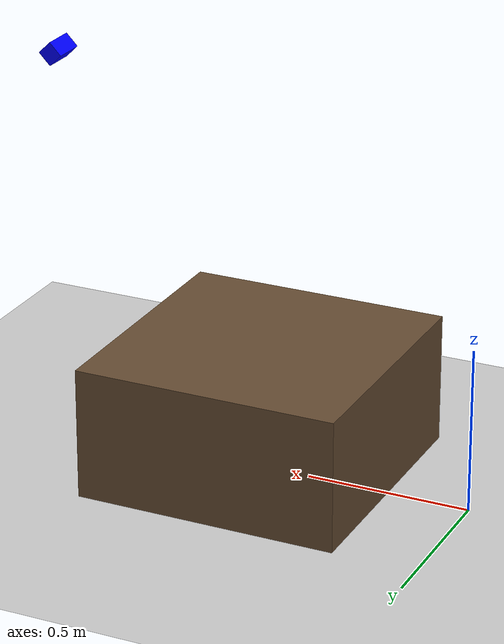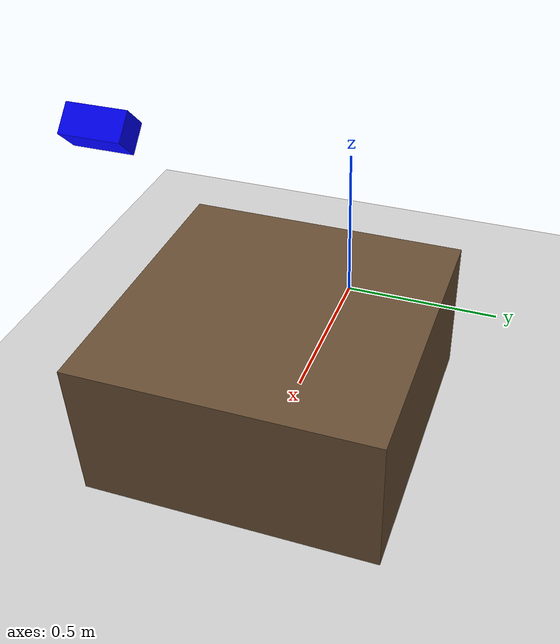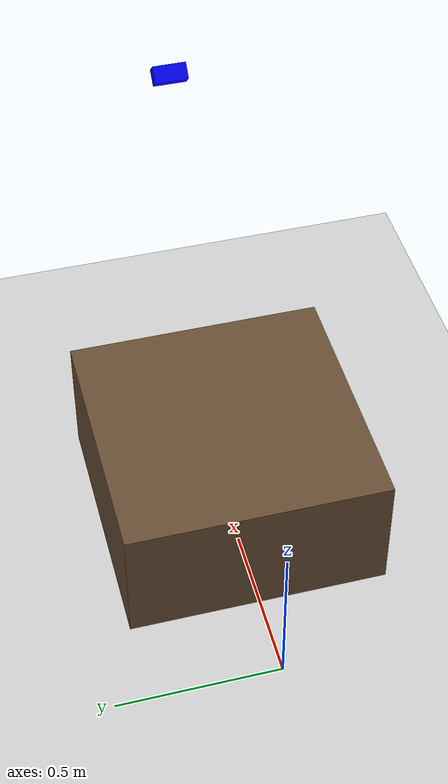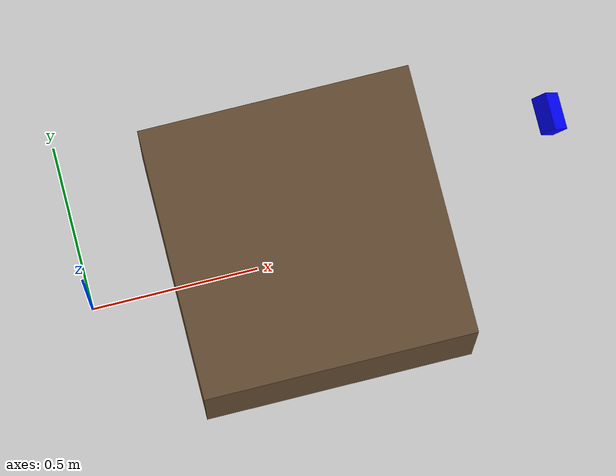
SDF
<?xml version="1.0" ?>
<sdf version="1.6">
  <world name="default">
    <include><uri>model://ground_plane</uri></include>
    <include><uri>model://sun</uri></include>

    <!-- TAVOLO: Un semplice cubo posizionato davanti al robot -->
    <model name="table">
      <static>true</static>
      <!-- Spostato più lontano a 0.65m e abbassato a 0.4m di altezza (z=0.2 per il centro) -->
      <pose>0.65 0 0.2 0 0 0</pose>
      <link name="link">
        <collision name="collision">
          <geometry><box><size>0.8 0.8 0.4</size></box></geometry>
        </collision>
        <visual name="visual">
          <geometry><box><size>0.8 0.8 0.4</size></box></geometry>
          <material>
            <ambient>0.4 0.3 0.2 1</ambient>
            <diffuse>0.4 0.3 0.2 1</diffuse>
          </material>
        </visual>
      </link>
    </model>

    <!-- CAMERA RGB-D: Plugin per pubblicare PointCloud2 -->
    <model name="camera">
      <static>true</static>
      <!-- Posizionata davanti e in alto rispetto al tavolo, guarda verso il basso (pitch=0.8) e verso il robot (yaw=3.14) -->
      <pose>1.3 0 1.2 0 0.8 3.14159</pose>
      <link name="link">
        <visual name="visual">
          <!-- Un piccolo cubo blu per capire dove si trova fisicamente la telecamera -->
          <geometry><box><size>0.05 0.1 0.05</size></box></geometry>
          <material><ambient>0 0 1 1</ambient></material>
        </visual>
        <sensor name="camera" type="depth">
          <update_rate>30</update_rate>
          <camera>
            <horizontal_fov>1.047198</horizontal_fov>
            <image><width>640</width><height>480</height><format>R8G8B8</format></image>
            <clip><near>0.05</near><far>3</far></clip>
          </camera>
          <plugin name="camera_controller" filename="libgazebo_ros_camera.so">
            <ros>
              <namespace>/camera</namespace>
            </ros>
            <camera_name>rgbd_camera</camera_name>
            <frame_name>camera_link_optical</frame_name>
            <min_depth>0.1</min_depth>
            <max_depth>10.0</max_depth>
          </plugin>
        </sensor>
      </link>
    </model>
  </world>
</sdf>
